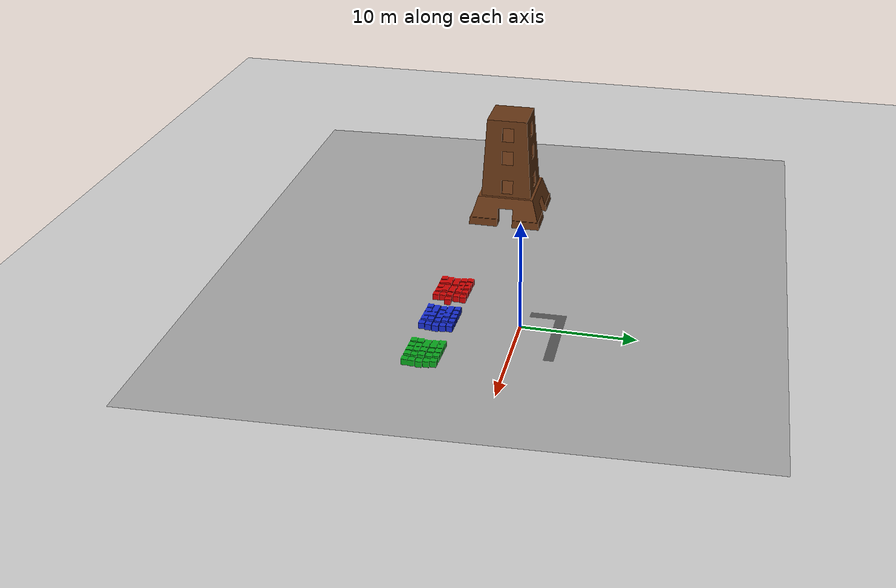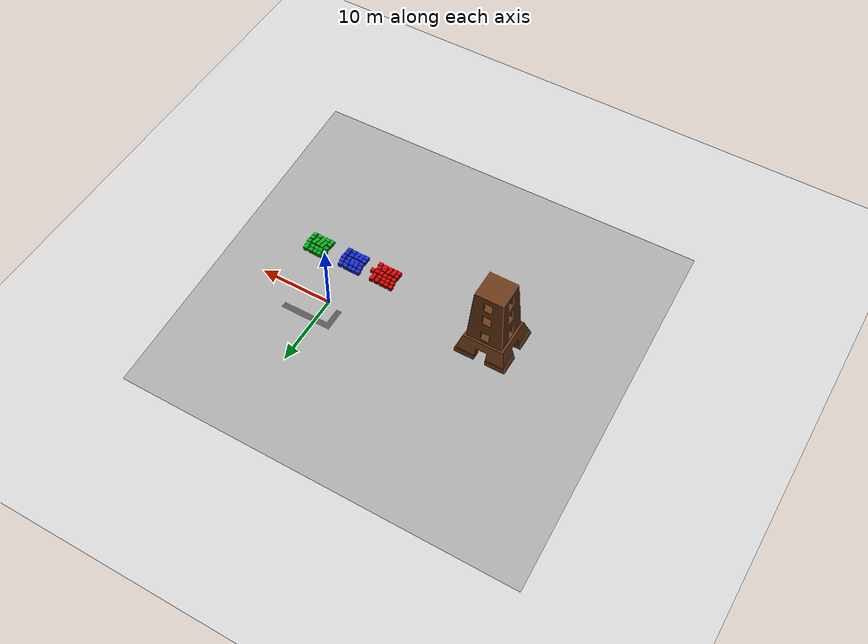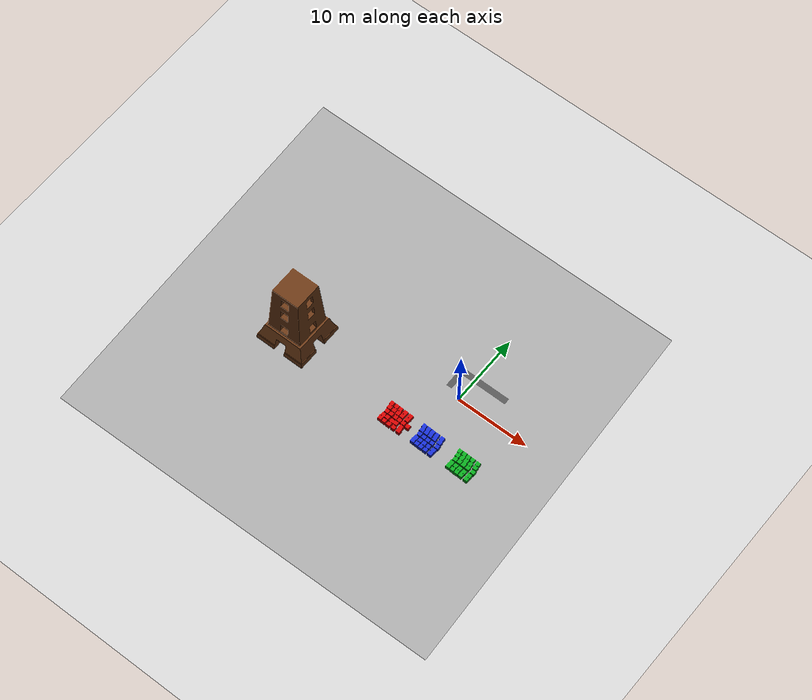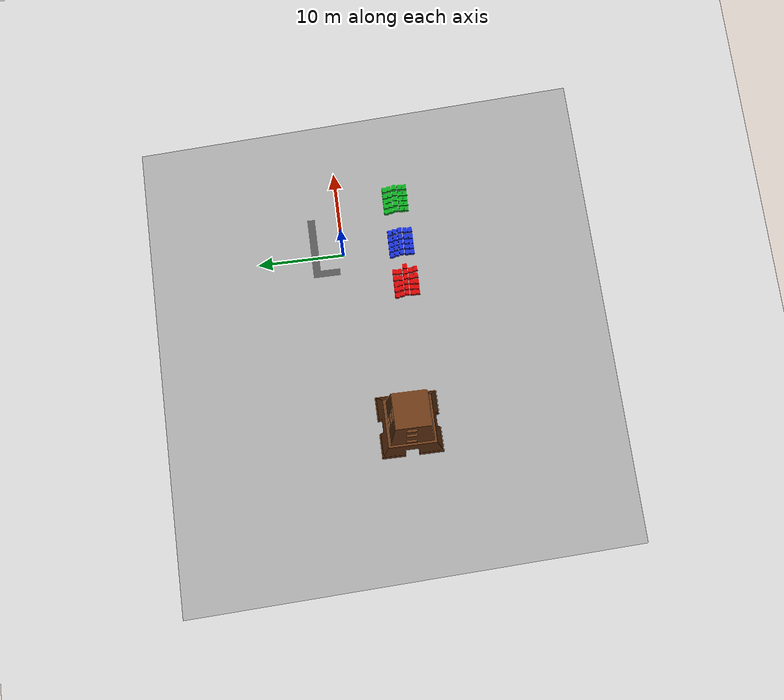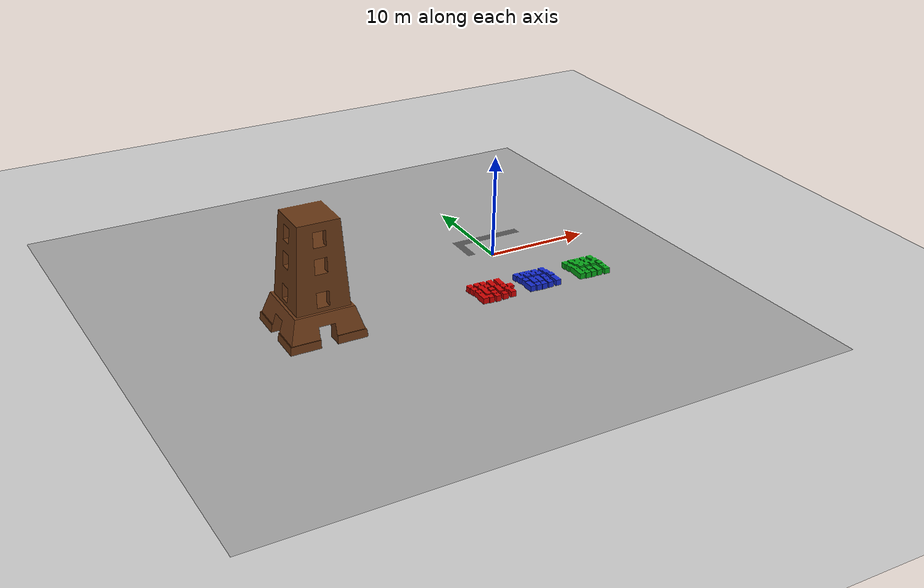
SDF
<?xml version="1.0" ?>
<sdf version='1.4'>
  <world name='default'>
    <!-- A global light source -->
    <include>
      <uri>model://sun</uri>
    </include>

    <!-- A ground plane -->
    <include>
      <uri>model://ground_plane</uri>
    </include>

    <physics type="ode">
      <real_time_update_rate>1000.0</real_time_update_rate>
      <max_step_size>0.001</max_step_size>
      <real_time_factor>1</real_time_factor>
      <ode>
        <solver>
          <type>quick</type>
          <iters>150</iters>
          <precon_iters>0</precon_iters>
          <sor>1.400000</sor>
          <use_dynamic_moi_rescaling>1</use_dynamic_moi_rescaling>
        </solver>
        <constraints>
          <cfm>0.00001</cfm>
          <erp>0.2</erp>
          <contact_max_correcting_vel>2000.000000</contact_max_correcting_vel>
          <contact_surface_layer>0.01000</contact_surface_layer>
        </constraints>
      </ode>
    </physics>

    <!-- Load world -->
    <include>
      <uri>model://MBZIRC</uri>
    </include>

    <scene>
      <ambient>0.4 0.4 0.4 1</ambient>
      <background>0.7 0.7 0.7 1</background>
      <shadows>true</shadows>
    </scene>

    <gui fullscreen='0'>
      <camera name='user_camera'>
        <pose>0.8 0.0 12.0 0 1.5708 0</pose>
        <view_controller>orbit</view_controller>
      </camera>
    </gui>
  </world>
</sdf>

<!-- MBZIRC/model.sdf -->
<sdf version="1.5">
  <model name="MBZIRC">
    <static>true</static>
    <link name="link">
      <pose>0 0 0.115 0 0 0</pose>
      <collision name="collision">
        <geometry>
          <mesh>
            <uri>model://MBZIRC/meshes/MBZIRC.dae</uri>
          </mesh>
        </geometry>
      </collision>
      <visual name="visual">
        <geometry>
          <mesh>
            <uri>model://MBZIRC/meshes/MBZIRC.dae</uri>
          </mesh>
        </geometry>
      </visual>
    </link>
  </model>
</sdf>
